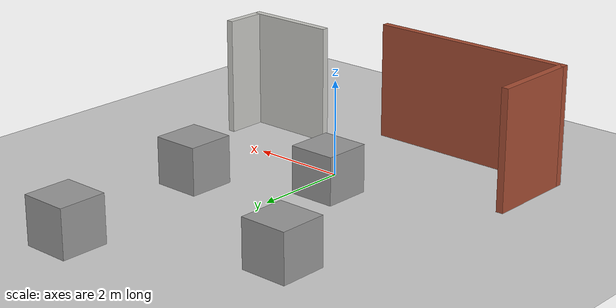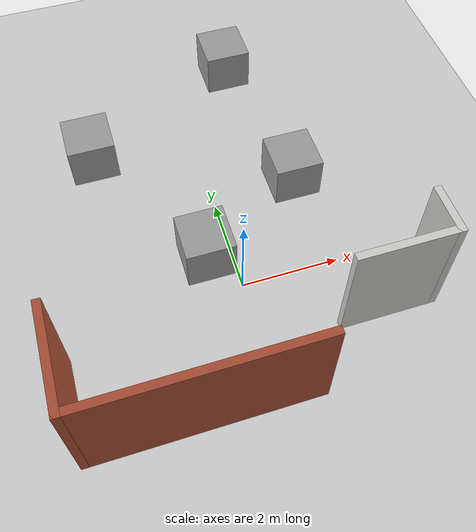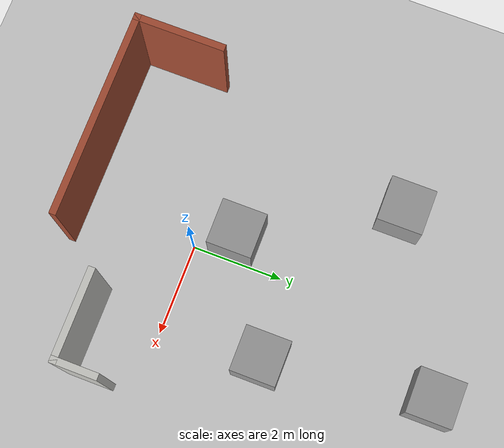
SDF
<sdf version="1.7">
 <world name="default">
  <light name="sun" type="directional">
   <pose>0 0 10 0 -0 0</pose>
   <diffuse>0.8 0.8 0.8 1</diffuse>
   <specular>0.2 0.2 0.2 1</specular>
   <attenuation>
    <range>1000</range>
    <constant>0.9</constant>
    <linear>0.01</linear>
    <quadratic>0.001</quadratic>
   </attenuation>
   <direction>-0.5 0.1 -0.9</direction>
   <spot><inner_angle>0</inner_angle><outer_angle>0</outer_angle><falloff>0</falloff></spot>
  </light>
  <model name="ground_plane">
   <static>1</static>
   <link name="link">
    <collision name="collision">
     <geometry><plane><normal>0 0 1</normal><size>100 100</size></plane></geometry>
     <surface>
      <contact><collide_bitmask>65535</collide_bitmask></contact>
      <friction><ode><mu>100</mu><mu2>50</mu2></ode></friction>
     </surface>
    </collision>
    <visual name="visual">
     <cast_shadows>0</cast_shadows>
     <geometry><plane><normal>0 0 1</normal><size>100 100</size></plane></geometry>
     <material>
      <script><uri>file://media/materials/scripts/gazebo.material</uri><name>Gazebo/Grey</name></script>
     </material>
    </visual>
   </link>
  </model>
  <gravity>0 0 -9.8</gravity>
  <magnetic_field>6e-06 2.3e-05 -4.2e-05</magnetic_field>
  <atmosphere type="adiabatic"/>
  <physics type="ode">
   <max_step_size>0.001</max_step_size>
   <real_time_factor>1</real_time_factor>
   <real_time_update_rate>1000</real_time_update_rate>
  </physics>
  <scene><ambient>0.4 0.4 0.4 1</ambient><background>0.7 0.7 0.7 1</background><shadows>1</shadows></scene>
  <spherical_coordinates>
   <surface_model>EARTH_WGS84</surface_model>
   <latitude_deg>0</latitude_deg>
   <longitude_deg>0</longitude_deg>
   <elevation>0</elevation>
   <heading_deg>0</heading_deg>
  </spherical_coordinates>
  <light name="sun" type="directional">
   <pose>-1.21454 -1.15373 10 0 -0 0</pose>
   <diffuse>0.8 0.8 0.8 1</diffuse>
   <specular>0.2 0.2 0.2 1</specular>
   <attenuation>
    <range>1000</range>
    <constant>0.9</constant>
    <linear>0.01</linear>
    <quadratic>0.001</quadratic>
   </attenuation>
   <direction>-0.5 0.1 -0.9</direction>
  </light>
  <model name="unit_box">
   <pose>-0.527763 0.811116 0.499995 1e-05 -0 0</pose>
   <link name="link">
    <inertial>
     <mass>1</mass>
     <inertia>
      <ixx>0.166667</ixx>
      <ixy>0</ixy>
      <ixz>0</ixz>
      <iyy>0.166667</iyy>
      <iyz>0</iyz>
      <izz>0.166667</izz>
     </inertia>
    </inertial>
    <collision name="collision"><geometry><box><size>1 1 1</size></box></geometry></collision>
    <visual name="visual">
     <geometry><box><size>1 1 1</size></box></geometry>
     <material>
      <script><name>Gazebo/Grey</name><uri>file://media/materials/scripts/gazebo.material</uri></script>
     </material>
    </visual>
   </link>
  </model>
  <model name="space">
   <pose>-0.106448 -1.32798 0 0 -0 0</pose>
   <link name="Wall_0">
    <collision name="Wall_0_Collision">
     <geometry><box><size>4.5 0.15 2.5</size></box></geometry>
     <pose>0 0 1.25 0 -0 0</pose>
    </collision>
    <visual name="Wall_0_Visual">
     <pose>0 0 1.25 0 -0 0</pose>
     <geometry><box><size>4.5 0.15 2.5</size></box></geometry>
     <material>
      <script><uri>file://media/materials/scripts/gazebo.material</uri><name>Gazebo/Bricks</name></script>
      <ambient>1 1 1 1</ambient>
     </material>
     <meta><layer>0</layer></meta>
    </visual>
    <pose>-1.345 -1.1975 0 0 -0 3.14159</pose>
   </link>
   <link name="Wall_1">
    <collision name="Wall_1_Collision">
     <geometry><box><size>2 0.15 2.5</size></box></geometry>
     <pose>0 0 1.25 0 -0 0</pose>
    </collision>
    <visual name="Wall_1_Visual">
     <pose>0 0 1.25 0 -0 0</pose>
     <geometry><box><size>2 0.15 2.5</size></box></geometry>
     <material>
      <script><uri>file://media/materials/scripts/gazebo.material</uri><name>Gazebo/Bricks</name></script>
      <ambient>1 1 1 1</ambient>
     </material>
     <meta><layer>0</layer></meta>
    </visual>
    <pose>-3.52 -0.2725 0 0 -0 1.5708</pose>
   </link>
   <link name="Wall_3">
    <collision name="Wall_3_Collision">
     <geometry><box><size>2 0.15 2.5</size></box></geometry>
     <pose>0 0 1.25 0 -0 0</pose>
    </collision>
    <visual name="Wall_3_Visual">
     <pose>0 0 1.25 0 -0 0</pose>
     <geometry><box><size>2 0.15 2.5</size></box></geometry>
     <material>
      <script><uri>file://media/materials/scripts/gazebo.material</uri><name>Gazebo/CeilingTiled</name></script>
      <ambient>1 1 1 1</ambient>
     </material>
     <meta><layer>0</layer></meta>
    </visual>
    <pose>2.595 -0.0575 0 0 -0 0</pose>
   </link>
   <link name="Wall_4">
    <collision name="Wall_4_Collision">
     <geometry><box><size>1 0.15 2.5</size></box></geometry>
     <pose>0 0 1.25 0 -0 0</pose>
    </collision>
    <visual name="Wall_4_Visual">
     <pose>0 0 1.25 0 -0 0</pose>
     <geometry><box><size>1 0.15 2.5</size></box></geometry>
     <material>
      <script><uri>file://media/materials/scripts/gazebo.material</uri><name>Gazebo/CeilingTiled</name></script>
      <ambient>1 1 1 1</ambient>
     </material>
     <meta><layer>0</layer></meta>
    </visual>
    <pose>3.52 0.3675 0 0 -0 1.5708</pose>
   </link>
   <static>1</static>
  </model>
  <model name="unit_box_0">
   <pose>1.78655 2.22182 0.499995 0 1e-05 0</pose>
   <link name="link">
    <inertial>
     <mass>1</mass>
     <inertia>
      <ixx>0.166667</ixx>
      <ixy>0</ixy>
      <ixz>0</ixz>
      <iyy>0.166667</iyy>
      <iyz>0</iyz>
      <izz>0.166667</izz>
     </inertia>
    </inertial>
    <collision name="collision"><geometry><box><size>1 1 1</size></box></geometry></collision>
    <visual name="visual">
     <geometry><box><size>1 1 1</size></box></geometry>
     <material>
      <script><name>Gazebo/Grey</name><uri>file://media/materials/scripts/gazebo.material</uri></script>
     </material>
    </visual>
   </link>
  </model>
  <model name="unit_box_1">
   <pose>-2.25661 3.97783 0.499995 -1e-05 -0 0</pose>
   <link name="link">
    <inertial>
     <mass>1</mass>
     <inertia>
      <ixx>0.166667</ixx>
      <ixy>0</ixy>
      <ixz>0</ixz>
      <iyy>0.166667</iyy>
      <iyz>0</iyz>
      <izz>0.166667</izz>
     </inertia>
    </inertial>
    <collision name="collision"><geometry><box><size>1 1 1</size></box></geometry></collision>
    <visual name="visual">
     <geometry><box><size>1 1 1</size></box></geometry>
     <material>
      <script><name>Gazebo/Grey</name><uri>file://media/materials/scripts/gazebo.material</uri></script>
     </material>
    </visual>
   </link>
  </model>
  <model name="unit_box_2">
   <pose>1.32151 5.84919 0.5 0 -0 0</pose>
   <link name="link">
    <inertial>
     <mass>1</mass>
     <inertia>
      <ixx>0.166667</ixx>
      <ixy>0</ixy>
      <ixz>0</ixz>
      <iyy>0.166667</iyy>
      <iyz>0</iyz>
      <izz>0.166667</izz>
     </inertia>
    </inertial>
    <collision name="collision"><geometry><box><size>1 1 1</size></box></geometry></collision>
    <visual name="visual">
     <geometry><box><size>1 1 1</size></box></geometry>
     <material>
      <script><name>Gazebo/Grey</name><uri>file://media/materials/scripts/gazebo.material</uri></script>
     </material>
    </visual>
   </link>
  </model>
 </world>
</sdf>
